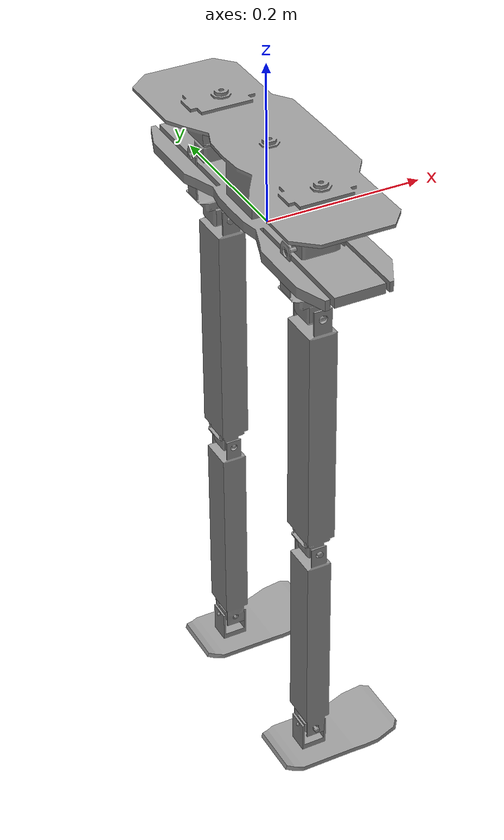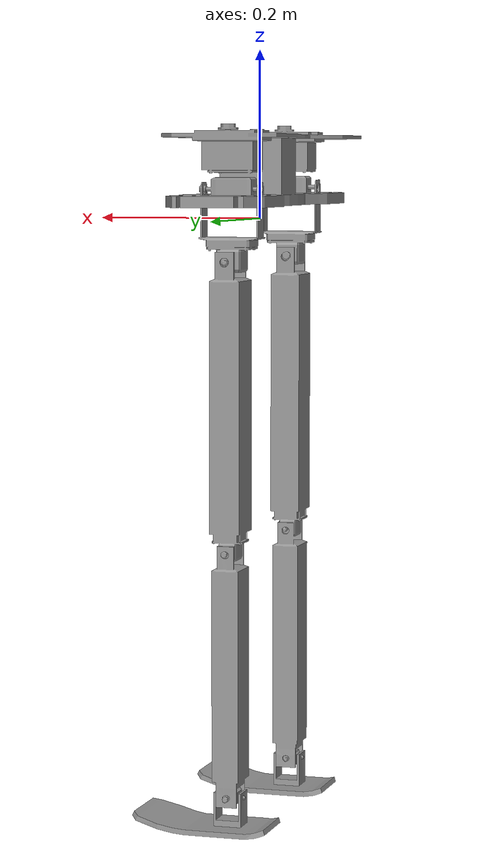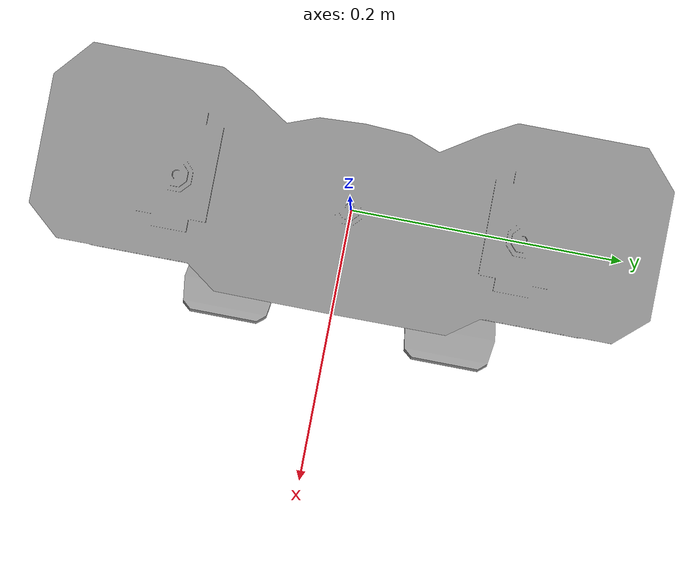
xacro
<?xml version="1.0"?>
<robot name="AmirMmv_BipedRobot_pkg"
    xmlns:xacro="http://www.ros.org/wiki/xacro">
    <xacro:property name="pi" value="3.141592654"/>
    <!-- Import xacro files -->
    <xacro:include filename="$(find amirmmv_bipedrobot_pkg)/urdf/materials.xacro" />
    <xacro:include filename="$(find amirmmv_bipedrobot_pkg)/urdf/visual_descriptions.xacro" />
    <xacro:include filename="$(find amirmmv_bipedrobot_pkg)/urdf/inertia.xacro" />
    <xacro:include filename="$(find amirmmv_bipedrobot_pkg)/urdf/transmissions.xacro" />
    <xacro:include filename="$(find amirmmv_bipedrobot_pkg)/urdf/right_leg.xacro" />
    <xacro:include filename="$(find amirmmv_bipedrobot_pkg)/urdf/left_leg.xacro" />
    <xacro:include filename="$(find amirmmv_bipedrobot_pkg)/urdf/gazebo_descriptions.xacro" />

    <link name="base_link"></link>
    <joint name="base_fixed" type="fixed">
        <origin xyz="0 0 0.1" rpy="0 0 0"/>
        <parent link="base_link"/>
        <child link="base_footprint"/>
    </joint>
    <!-- base_link -->
    <link name="base_footprint">
        <visual>
            <xacro:insert_mesh_base_link />
        </visual>
        <collision>
            <xacro:insert_mesh_base_link />
        </collision>
        <inertial>
            <xacro:insert_inertia_base_link />
        </inertial>
    </link>
    <!-- imu joint  -->
    <joint name="imu_fixed" type="fixed">
        <origin xyz="0 0 0.45" rpy="0 0 0"/>
        <parent link="base_footprint"/>
        <child link="imu_link"/>
    </joint>
    <link name="imu_link"></link>
    <!-- leg link -->
    <xacro:right_leg parent="base_footprint" dxl_effort="10" dxl_speed="2"/>
    <xacro:left_leg parent="base_footprint" dxl_effort="10" dxl_speed="2"/>
</robot>

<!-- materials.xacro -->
<robot>
    <material name="black">
        <color rgba="0.0 0.0 0.0 1.0"/>
    </material>
    <material name="blue">
        <color rgba="0.0 0.0 0.8 1.0"/>
    </material>
    <material name="green">
        <color rgba="0.0 0.8 0.0 1.0"/>
    </material>
    <material name="grey">
        <color rgba="0.6 0.6 0.6 1.0"/>
    </material>
    <material name="orange">
        <color rgba="${255/255} ${108/255} ${10/255} 1.0"/>
    </material>
    <material name="brown">
        <color rgba="${222/255} ${207/255} ${195/255} 1.0"/>
    </material>
    <material name="red">
        <color rgba="0.8 0.0 0.0 1.0"/>
    </material>
    <material name="white">
        <color rgba="1.0 1.0 1.0 1.0"/>
    </material>
</robot>

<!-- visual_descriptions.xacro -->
<robot
    xmlns:xacro="http://www.ros.org/wiki/xacro">
    <!-- body link -->
    <xacro:macro name="insert_mesh_base_link">
        <origin xyz="0 0 0" rpy="0 0 0" />
        <geometry>
            <mesh filename="package://amirmmv_bipedrobot_pkg/meshes/base.stl" scale="1 1.25 1" />
        </geometry>
        <material name="grey"/>
    </xacro:macro>
    <!-- right hip yaw link -->
    <xacro:macro name="insert_mesh_r_hip_yaw_link">
        <origin xyz="0 0 0" rpy="0 0 0" />
        <geometry>
            <mesh filename="package://amirmmv_bipedrobot_pkg/meshes/r_hip_yaw.stl" scale="1 1 1" />
        </geometry>
        <material name="grey"/>
    </xacro:macro>
   <!-- right hip roll link -->
    <xacro:macro name="insert_mesh_r_hip_roll_link">
        <origin xyz="0 0 0" rpy="0 0 0" />
        <geometry>
            <mesh filename="package://amirmmv_bipedrobot_pkg/meshes/r_hip_roll.stl" scale="1 1 1" />
        </geometry>
        <material name="grey"/>
    </xacro:macro>
    <!-- right hip pitch link -->
    <xacro:macro name="insert_mesh_r_hip_pitch_link">
        <origin xyz="0 0 0" rpy="0 0 0" />
        <geometry>
            <mesh filename="package://amirmmv_bipedrobot_pkg/meshes/r_hip_pitch.stl" scale="1 1 1" />
        </geometry>
        <material name="grey"/>
    </xacro:macro>
    <!-- right knee link -->
    <xacro:macro name="insert_mesh_r_knee_pitch_link">
        <origin xyz="0 0 0" rpy="0 0 0" />
        <geometry>
            <mesh filename="package://amirmmv_bipedrobot_pkg/meshes/r_knee_pitch.stl" scale="1 1 1" />
        </geometry>
        <material name="grey"/>
    </xacro:macro>
    <!-- right ankle pitch link -->
    <xacro:macro name="insert_mesh_r_ankle_pitch_link">
        <origin xyz="0 0 0" rpy="0 0 0" />
        <geometry>
            <mesh filename="package://amirmmv_bipedrobot_pkg/meshes/r_ankle_pitch.stl" scale="1 1 1" />
        </geometry>
        <material name="grey"/>
    </xacro:macro>
    <!-- right ankle roll link -->
    <xacro:macro name="insert_mesh_r_ankle_roll_link">
        <origin xyz="0 0 0" rpy="0 0 0" />
        <geometry>
            <mesh filename="package://amirmmv_bipedrobot_pkg/meshes/r_ankle_roll.stl" scale="1 1 1" />
        </geometry>
        <material name="grey"/>
    </xacro:macro>
    <!-- left hip yaw link -->
    <xacro:macro name="insert_mesh_l_hip_yaw_link">
        <origin xyz="0 0 0" rpy="0 0 0" />
        <geometry>
            <mesh filename="package://amirmmv_bipedrobot_pkg/meshes/l_hip_yaw.stl" scale="1 1 1" />
        </geometry>
        <material name="grey"/>
    </xacro:macro>
    <!-- left hip roll link -->
    <xacro:macro name="insert_mesh_l_hip_roll_link">
        <origin xyz="0 0 0" rpy="0 0 0" />
        <geometry>
            <mesh filename="package://amirmmv_bipedrobot_pkg/meshes/l_hip_roll.stl" scale="1 1 1" />
        </geometry>
        <material name="grey"/>
    </xacro:macro>
    <!-- left hip pitch link -->
    <xacro:macro name="insert_mesh_l_hip_pitch_link">
        <origin xyz="0 0 0" rpy="0 0 0" />
        <geometry>
            <mesh filename="package://amirmmv_bipedrobot_pkg/meshes/l_hip_pitch.stl" scale="1 1 1" />
        </geometry>
        <material name="grey"/>
    </xacro:macro>
    <!-- left knee pitch link -->
    <xacro:macro name="insert_mesh_l_knee_pitch_link">
        <origin xyz="0 0 0" rpy="0 0 0" />
        <geometry>
            <mesh filename="package://amirmmv_bipedrobot_pkg/meshes/l_knee_pitch.stl" scale="1 1 1" />
        </geometry>
        <material name="grey"/>
    </xacro:macro>
    <!-- left ankle pitch link -->
    <xacro:macro name="insert_mesh_l_ankle_pitch_link">
        <origin xyz="0 0 0" rpy="0 0 0" />
        <geometry>
            <mesh filename="package://amirmmv_bipedrobot_pkg/meshes/l_ankle_pitch.stl" scale="1 1 1" />
        </geometry>
        <material name="grey"/>
    </xacro:macro>
    <!-- left ankle roll link -->
    <xacro:macro name="insert_mesh_l_ankle_roll_link">
        <origin xyz="0 0 0" rpy="0 0 0" />
        <geometry>
            <mesh filename="package://amirmmv_bipedrobot_pkg/meshes/l_ankle_roll.stl" scale="1 1 1" />
        </geometry>
        <material name="grey"/>
    </xacro:macro>
</robot>

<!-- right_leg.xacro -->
<robot
    xmlns:xacro="http://www.ros.org/wiki/xacro">
    <!-- right leg  -->
    <xacro:macro name="right_leg" params="parent dxl_effort dxl_speed">
        <!-- right hip yaw joint 0.0 -0.09 -0.073 -->
        <joint name="r_hip_yaw_joint" type="fixed">
            <axis xyz="0 0 1" />
            <origin xyz="0.0 -0.09 -0.118" rpy="0 0 ${-pi/2}"/>
            <parent link="${parent}"/>
            <child link="r_hip_yaw_link"/>
</joint>
<!-- right hip yaw link -->
        <link name="r_hip_yaw_link">
            <visual>
                <xacro:insert_mesh_r_hip_yaw_link />
            </visual>
            <collision>
                <xacro:insert_mesh_r_hip_yaw_link />
            </collision>
            <inertial>
                <xacro:insert_inertia_r_hip_yaw_link />
            </inertial>
        </link>
        <!-- right hip roll joint 0.0285 0.005 0.0487 -->
        <joint name="r_hip_roll_joint" type="revolute">
            <axis xyz="0 0 1" />
            <origin xyz="0.0285 -0.005 0.0537" rpy="${pi/2} 0 ${pi}"/>
            <parent link="r_hip_yaw_link"/>
            <child link="r_hip_roll_link"/>
            <limit effort="${dxl_effort}" lower="${-0.5}" upper="${0.5}" velocity="${dxl_speed}"/>
            <dynamics damping="0.01" friction="0.1"/>
         </joint>
        <xacro:insert_transmission name="r_hip_roll_joint"/>
        <!-- right hip roll link -->
        <link name="r_hip_roll_link">
            <visual>
                <xacro:insert_mesh_r_hip_roll_link />
            </visual>
            <collision>
                <xacro:insert_mesh_r_hip_roll_link />
            </collision>
            <inertial>
                <xacro:insert_inertia_r_hip_roll_link />
            </inertial>
        </link>
        <!-- right hip pitch joint 0 -0.084 0.0060 -->
        <joint name="r_hip_pitch_joint" type="revolute">
            <axis xyz="0 0 1" />
            <origin xyz="0 -0.084 0.0000" rpy="${-pi/2} 0 ${-pi/2}"/>
            <parent link="r_hip_roll_link"/>
            <child link="r_hip_pitch_link"/>
            <limit effort="${dxl_effort}" lower="${-1.396}" upper="${1.396}" velocity="${dxl_speed}"/>
            <dynamics damping="0.01" friction="0.1"/>
        </joint>
        <xacro:insert_transmission name="r_hip_pitch_joint"/>
        <!-- right hip pitch link -->
        <link name="r_hip_pitch_link">
            <visual>
                <xacro:insert_mesh_r_hip_pitch_link />
            </visual>
            <collision>
                <xacro:insert_mesh_r_hip_pitch_link />
            </collision>
            <inertial>
                <xacro:insert_inertia_r_hip_pitch_link />
            </inertial>
        </link>
        <!-- right knee pitch joint 0.34 0 0 -->
        <joint name="r_knee_pitch_joint" type="revolute">
            <axis xyz="0 0 1" />
            <origin xyz="0.34 0 0" rpy="0 0 0"/>
            <parent link="r_hip_pitch_link"/>
            <child link="r_knee_pitch_link"/>
            <limit effort="${dxl_effort}" lower="${0.0}" upper="${1.4}" velocity="${dxl_speed}"/>
            <dynamics damping="0.01" friction="0.1"/>
        </joint>
        <xacro:insert_transmission name="r_knee_pitch_joint"/>
        <!-- right knee pitch link -->
        <link name="r_knee_pitch_link">
            <visual>
                <xacro:insert_mesh_r_knee_pitch_link />
            </visual>
            <collision>
                <xacro:insert_mesh_r_knee_pitch_link />
            </collision>
            <inertial>
                <xacro:insert_inertia_r_knee_pitch_link />
            </inertial>
        </link>
        <!-- right ankle pitch joint 0.28 0 0 -->
        <joint name="r_ankle_pitch_joint" type="revolute">
            <axis xyz="0 0 1" />
            <origin xyz="0.3 0 0" rpy="0 0 0"/>
            <parent link="r_knee_pitch_link"/>
            <child link="r_ankle_pitch_link"/>
            <limit effort="${dxl_effort}" lower="${-0.349}" upper="${1.047}" velocity="${dxl_speed}"/>
            <dynamics damping="0.01" friction="0.1"/>
        </joint>
        <xacro:insert_transmission name="r_ankle_pitch_joint"/>
        <!-- right ankle pitch link -->
        <link name="r_ankle_pitch_link">
            <visual>
                <xacro:insert_mesh_r_ankle_pitch_link />
            </visual>
            <collision>
                <xacro:insert_mesh_r_ankle_pitch_link />
            </collision>
            <inertial>
                <xacro:insert_inertia_r_ankle_pitch_link />
            </inertial>
        </link>
        <!-- right ankle roll  0.01 0 0 -->
        <joint name="r_ankle_roll_joint" type="revolute">
            <axis xyz="0 0 1" />
            <origin xyz="-0.01 0 0" rpy="${pi/2} 0 0"/>
            <parent link="r_ankle_pitch_link"/>
            <child link="r_ankle_roll_link"/>
            <limit effort="${dxl_effort}" lower="${-0.5}" upper="${0.5}" velocity="${dxl_speed}"/>
            <dynamics damping="0.01" friction="0.1"/>
         </joint>
        <xacro:insert_transmission name="r_ankle_roll_joint"/>
        <!-- right ankle roll link -->
        <link name="r_ankle_roll_link">
            <visual>
                <xacro:insert_mesh_r_ankle_roll_link />
            </visual>
            <collision>
                <xacro:insert_mesh_r_ankle_roll_link />
            </collision>
            <inertial>
                <xacro:insert_inertia_r_ankle_roll_link />
            </inertial>
        </link>
        <!-- right ft fixed joint -->
        <joint name="r_ft_fixed" type="fixed">
            <origin xyz="0.045 0.0 0.0" rpy="0 ${-pi/2} 0"/>
            <parent link="r_ankle_roll_link"/>
            <child link="r_foot_ft_link"/>
        </joint>
        <!-- right foot ft link -->
        <link name="r_foot_ft_link"></link>
    </xacro:macro>
</robot>

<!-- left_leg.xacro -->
<robot
    xmlns:xacro="http://www.ros.org/wiki/xacro">
    <!-- left leg -->
    <xacro:macro name="left_leg" params="parent dxl_effort dxl_speed">
        <!-- left hip yaw joint -->
        <joint name="l_hip_yaw_joint" type="fixed">
            <axis xyz="0 0 1" />
            <origin xyz="0.0 0.09 -0.108" rpy="0 0 ${pi/2}"/>
            <parent link="${parent}"/>
            <child link="l_hip_yaw_link"/>
            </joint>

       <!-- left hip yaw link -->
        <link name="l_hip_yaw_link">
            <visual>
                <xacro:insert_mesh_l_hip_yaw_link />
            </visual>
            <collision>
                <xacro:insert_mesh_l_hip_yaw_link />
            </collision>
            <inertial>
                <xacro:insert_inertia_l_hip_yaw_link />
            </inertial>
        </link>
        <!-- left hip roll joint-->
        <joint name="l_hip_roll_joint" type="revolute">
            <axis xyz="0 0 1" />
            <origin xyz="0.0285 0.005 0.0450" rpy="${pi/2} 0 0"/>
            <parent link="l_hip_yaw_link"/>
            <child link="l_hip_roll_link"/>
            <limit effort="${dxl_effort}" lower="${-0.5}" upper="${0.5}" velocity="${dxl_speed}"/>
            <dynamics damping="0.01" friction="0.1"/>
       </joint>
        <xacro:insert_transmission name="l_hip_roll_joint"/>
        <!-- left hip roll link -->
        <link name="l_hip_roll_link">
            <visual>
                <xacro:insert_mesh_l_hip_roll_link />
            </visual>
            <collision>
                <xacro:insert_mesh_l_hip_roll_link />
            </collision>
            <inertial>
                <xacro:insert_inertia_l_hip_roll_link />
            </inertial>
        </link>
        <!-- left hip pitch joint -->
        <joint name="l_hip_pitch_joint" type="revolute">
            <axis xyz="0 0 1" />
            <origin xyz="0 -0.084 0.0060" rpy="${-pi/2} 0 ${-pi/2}"/>
            <parent link="l_hip_roll_link"/>
            <child link="l_hip_pitch_link"/>
            <limit effort="${dxl_effort}" lower="${-1.396}" upper="${1.396}" velocity="${dxl_speed}"/>
            <dynamics damping="0.01" friction="0.1"/>
        </joint>
        <xacro:insert_transmission name="l_hip_pitch_joint"/>
        <!-- left hip pitch link -->
        <link name="l_hip_pitch_link">
            <visual>
                <xacro:insert_mesh_l_hip_pitch_link />
            </visual>
            <collision>
                <xacro:insert_mesh_l_hip_pitch_link />
            </collision>
            <inertial>
                <xacro:insert_inertia_l_hip_pitch_link />
            </inertial>
        </link>
        <!-- left knee pitch joint -->
        <joint name="l_knee_pitch_joint" type="revolute">
            <axis xyz="0 0 1" />
            <origin xyz="0.34 0 0" rpy="0 0 0"/>
            <parent link="l_hip_pitch_link"/>
            <child link="l_knee_pitch_link"/>
            <limit effort="${dxl_effort}" lower="${0}" upper="${1.4}" velocity="${dxl_speed}"/>
            <dynamics damping="0.01" friction="0.1"/>
        </joint>
        <xacro:insert_transmission name="l_knee_pitch_joint"/>
        <!-- left knee pitch link -->
        <link name="l_knee_pitch_link">
            <visual>
                <xacro:insert_mesh_l_knee_pitch_link />
            </visual>
            <collision>
                <xacro:insert_mesh_l_knee_pitch_link />
            </collision>
            <inertial>
                <xacro:insert_inertia_l_knee_pitch_link />
            </inertial>
        </link>
        <!-- left ankle pitch joint -->
        <joint name="l_ankle_pitch_joint" type="revolute">
            <axis xyz="0 0 1" />
            <origin xyz="0.28 0 0" rpy="0 0 0"/>
            <parent link="l_knee_pitch_link"/>
            <child link="l_ankle_pitch_link"/>
            <limit effort="${dxl_effort}" lower="${-0.349}" upper="${1.047}" velocity="${dxl_speed}"/>
            <dynamics damping="0.01" friction="0.1"/>
        </joint>
        <xacro:insert_transmission name="l_ankle_pitch_joint"/>
        <!-- left ankle pitch link -->
        <link name="l_ankle_pitch_link">
            <visual>
                <xacro:insert_mesh_l_ankle_pitch_link />
            </visual>
            <collision>
                <xacro:insert_mesh_l_ankle_pitch_link />
            </collision>
            <inertial>
                <xacro:insert_inertia_l_ankle_pitch_link />
            </inertial>
        </link>
        <!-- left ankle roll pitch -->
        <joint name="l_ankle_roll_joint" type="revolute">
            <axis xyz="0 0 1" />
            <origin xyz="0.01 0 0" rpy="${pi/2} 0 0"/>
            <parent link="l_ankle_pitch_link"/>
            <child link="l_ankle_roll_link"/>
            <limit effort="${dxl_effort}" lower="${-0.5}" upper="${0.5}" velocity="${dxl_speed}"/>
           <dynamics damping="0.1" friction="0.01"/>

        </joint>
        <xacro:insert_transmission name="l_ankle_roll_joint"/>
        <!-- left ankle roll link -->
        <link name="l_ankle_roll_link">
            <visual>
                <xacro:insert_mesh_l_ankle_roll_link />
            </visual>
            <collision>
                <xacro:insert_mesh_l_ankle_roll_link />
            </collision>
            <inertial>
                <xacro:insert_inertia_l_ankle_roll_link />
            </inertial>
        </link>
        <!-- left ft fixed joint -->
        <joint name="l_ft_fixed" type="fixed">
            <origin xyz="0.045 0.0 0.0" rpy="0 ${-pi/2} 0"/>
            <parent link="l_ankle_roll_link"/>
            <child link="l_foot_ft_link"/>
        </joint>
        <!-- left foot ft link -->
        <link name="l_foot_ft_link">
         </link>
    </xacro:macro>
</robot>
